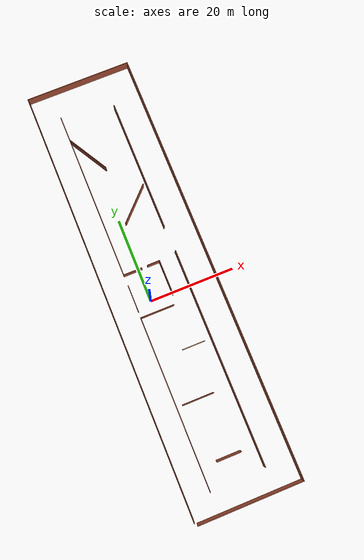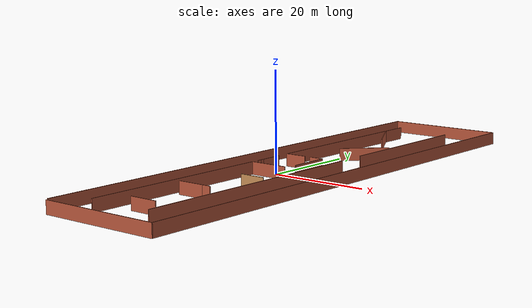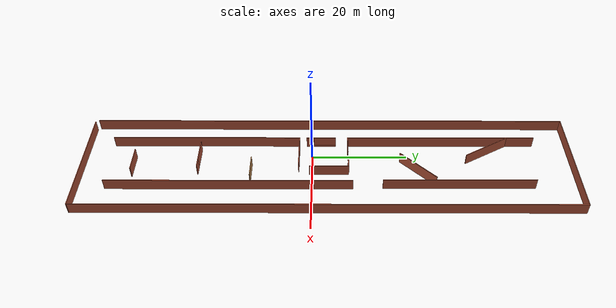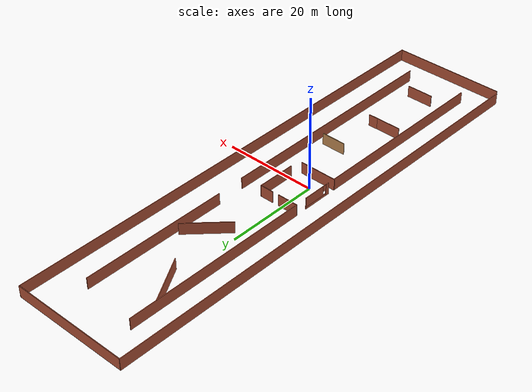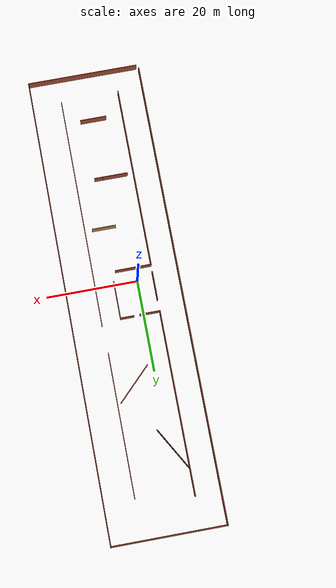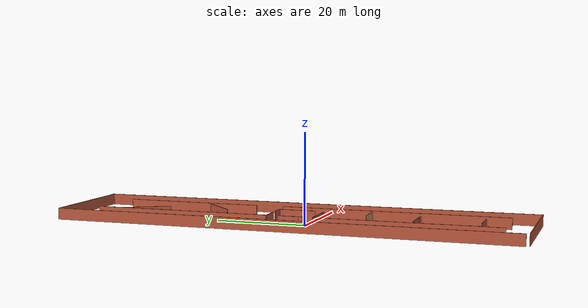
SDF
<?xml version='1.0'?>
<sdf version='1.6'>
  <model name='gallery'>
    <pose frame=''>3.34983 3.27444 0 0 -0 0</pose>
    <link name='Wall_0'>
      <collision name='Wall_0_Collision'>
        <geometry>
          <box>
            <size>8 0.15 2.5</size>
          </box>
        </geometry>
        <pose frame=''>0 0 1.25 0 -0 0</pose>
      </collision>
      <visual name='Wall_0_Visual'>
        <pose frame=''>0 0 1.25 0 -0 0</pose>
        <geometry>
          <box>
            <size>8 0.15 2.5</size>
          </box>
        </geometry>
        <material>
          <script>
            <uri>file://media/materials/scripts/gazebo.material</uri>
            <name>Gazebo/Bricks</name>
          </script>
          <ambient>1 1 1 1</ambient>
        </material>
        <meta>
          <layer>0</layer>
        </meta>
      </visual>
      <pose frame=''>-2.95252 -6.06716 0 0 -0 0</pose>
    </link>
    <link name='Wall_11'>
      <collision name='Wall_11_Collision'>
        <geometry>
          <box>
            <size>3 0.15 2.5</size>
          </box>
        </geometry>
        <pose frame=''>0 0 1.25 0 -0 0</pose>
      </collision>
      <visual name='Wall_11_Visual'>
        <pose frame=''>0 0 1.25 0 -0 0</pose>
        <geometry>
          <box>
            <size>3 0.15 2.5</size>
          </box>
        </geometry>
        <material>
          <script>
            <uri>file://media/materials/scripts/gazebo.material</uri>
            <name>Gazebo/Bricks</name>
          </script>
          <ambient>1 1 1 1</ambient>
        </material>
        <meta>
          <layer>0</layer>
        </meta>
      </visual>
      <pose frame=''>0.336652 4.31441 0 0 -0 0</pose>
    </link>
    <link name='Wall_12'>
      <collision name='Wall_12_Collision'>
        <geometry>
          <box>
            <size>8.25 0.15 2.5</size>
          </box>
        </geometry>
        <pose frame=''>0 0 1.25 0 -0 0</pose>
      </collision>
      <visual name='Wall_12_Visual'>
        <pose frame=''>0 0 1.25 0 -0 0</pose>
        <geometry>
          <box>
            <size>8.25 0.15 2.5</size>
          </box>
        </geometry>
        <material>
          <script>
            <uri>file://media/materials/scripts/gazebo.material</uri>
            <name>Gazebo/Bricks</name>
          </script>
          <ambient>1 1 1 1</ambient>
        </material>
        <meta>
          <layer>0</layer>
        </meta>
      </visual>
      <pose frame=''>1.76165 0.264411 0 0 -0 -1.5708</pose>
    </link>
    <link name='Wall_20'>
      <collision name='Wall_20_Collision'>
        <geometry>
          <box>
            <size>101.75 0.15 2.5</size>
          </box>
        </geometry>
        <pose frame=''>0 0 1.25 0 -0 0</pose>
      </collision>
      <visual name='Wall_20_Visual'>
        <pose frame=''>0 0 1.25 0 -0 0</pose>
        <geometry>
          <box>
            <size>101.75 0.15 2.5</size>
          </box>
        </geometry>
        <material>
          <script>
            <uri>file://media/materials/scripts/gazebo.material</uri>
            <name>Gazebo/Bricks</name>
          </script>
          <ambient>1 1 1 1</ambient>
        </material>
        <meta>
          <layer>0</layer>
        </meta>
      </visual>
      <pose frame=''>-12.425 0.375 0 0 -0 1.5708</pose>
    </link>
    <link name='Wall_21'>
      <collision name='Wall_21_Collision'>
        <geometry>
          <box>
            <size>25 0.15 2.5</size>
          </box>
        </geometry>
        <pose frame=''>0 0 1.25 0 -0 0</pose>
      </collision>
      <visual name='Wall_21_Visual'>
        <pose frame=''>0 0 1.25 0 -0 0</pose>
        <geometry>
          <box>
            <size>25 0.15 2.5</size>
          </box>
        </geometry>
        <material>
          <script>
            <uri>file://media/materials/scripts/gazebo.material</uri>
            <name>Gazebo/Bricks</name>
          </script>
          <ambient>1 1 1 1</ambient>
        </material>
        <meta>
          <layer>0</layer>
        </meta>
      </visual>
      <pose frame=''>0 51.175 0 0 -0 0</pose>
    </link>
    <link name='Wall_22'>
      <collision name='Wall_22_Collision'>
        <geometry>
          <box>
            <size>102.5 0.15 2.5</size>
          </box>
        </geometry>
        <pose frame=''>0 0 1.25 0 -0 0</pose>
      </collision>
      <visual name='Wall_22_Visual'>
        <pose frame=''>0 0 1.25 0 -0 0</pose>
        <geometry>
          <box>
            <size>102.5 0.15 2.5</size>
          </box>
        </geometry>
        <material>
          <script>
            <uri>file://media/materials/scripts/gazebo.material</uri>
            <name>Gazebo/Bricks</name>
          </script>
          <ambient>1 1 1 1</ambient>
        </material>
        <meta>
          <layer>0</layer>
        </meta>
      </visual>
      <pose frame=''>12.425 -0 0 0 -0 -1.5708</pose>
    </link>
    <link name='Wall_23'>
      <collision name='Wall_23_Collision'>
        <geometry>
          <box>
            <size>24.5 0.15 2.5</size>
          </box>
        </geometry>
        <pose frame=''>0 0 1.25 0 -0 0</pose>
      </collision>
      <visual name='Wall_23_Visual'>
        <pose frame=''>0 0 1.25 0 -0 0</pose>
        <geometry>
          <box>
            <size>24.5 0.15 2.5</size>
          </box>
        </geometry>
        <material>
          <script>
            <uri>file://media/materials/scripts/gazebo.material</uri>
            <name>Gazebo/Bricks</name>
          </script>
          <ambient>1 1 1 1</ambient>
        </material>
        <meta>
          <layer>0</layer>
        </meta>
      </visual>
      <pose frame=''>0.25 -51.175 0 0 -0 3.14159</pose>
    </link>
    <link name='Wall_25'>
      <collision name='Wall_25_Collision'>
        <geometry>
          <box>
            <size>40 0.15 2.5</size>
          </box>
        </geometry>
        <pose frame=''>0 0 1.25 0 -0 0</pose>
      </collision>
      <visual name='Wall_25_Visual'>
        <pose frame=''>0 0 1.25 0 -0 0</pose>
        <geometry>
          <box>
            <size>40 0.15 2.5</size>
          </box>
        </geometry>
        <material>
          <script>
            <uri>file://media/materials/scripts/gazebo.material</uri>
            <name>Gazebo/Bricks</name>
          </script>
          <ambient>0.760784 0.662745 0.627451 1</ambient>
        </material>
        <meta>
          <layer>0</layer>
        </meta>
      </visual>
      <pose frame=''>-6.87752 -25.9922 0 0 -0 -1.5708</pose>
    </link>
    <link name='Wall_27'>
      <collision name='Wall_27_Collision'>
        <geometry>
          <box>
            <size>40 0.15 2.5</size>
          </box>
        </geometry>
        <pose frame=''>0 0 1.25 0 -0 0</pose>
      </collision>
      <visual name='Wall_27_Visual'>
        <pose frame=''>0 0 1.25 0 -0 0</pose>
        <geometry>
          <box>
            <size>40 0.15 2.5</size>
          </box>
        </geometry>
        <material>
          <script>
            <uri>file://media/materials/scripts/gazebo.material</uri>
            <name>Gazebo/Bricks</name>
          </script>
          <ambient>1 1 1 1</ambient>
        </material>
        <meta>
          <layer>0</layer>
        </meta>
      </visual>
      <pose frame=''>-6.87197 24.1779 0 0 -0 1.5708</pose>
    </link>
    <link name='Wall_29'>
      <collision name='Wall_29_Collision'>
        <geometry>
          <box>
            <size>50.75 0.15 2.5</size>
          </box>
        </geometry>
        <pose frame=''>0 0 1.25 0 -0 0</pose>
      </collision>
      <visual name='Wall_29_Visual'>
        <pose frame=''>0 0 1.25 0 -0 0</pose>
        <geometry>
          <box>
            <size>50.75 0.15 2.5</size>
          </box>
        </geometry>
        <material>
          <script>
            <uri>file://media/materials/scripts/gazebo.material</uri>
            <name>Gazebo/Bricks</name>
          </script>
          <ambient>1 1 1 1</ambient>
        </material>
        <meta>
          <layer>0</layer>
        </meta>
      </visual>
      <pose frame=''>5.95783 -20.2328 0 0 -0 -1.5708</pose>
    </link>
    <link name='Wall_31'>
      <collision name='Wall_31_Collision'>
        <geometry>
          <box>
            <size>31.25 0.15 2.5</size>
          </box>
        </geometry>
        <pose frame=''>0 0 1.25 0 -0 0</pose>
      </collision>
      <visual name='Wall_31_Visual'>
        <pose frame=''>0 0 1.25 0 -0 0</pose>
        <geometry>
          <box>
            <size>31.25 0.15 2.5</size>
          </box>
        </geometry>
        <material>
          <script>
            <uri>file://media/materials/scripts/gazebo.material</uri>
            <name>Gazebo/Bricks</name>
          </script>
          <ambient>1 1 1 1</ambient>
        </material>
        <meta>
          <layer>0</layer>
        </meta>
      </visual>
      <pose frame=''>5.70892 26.84 0 0 -0 1.5708</pose>
    </link>
    <link name='Wall_33'>
      <collision name='Wall_33_Collision'>
        <geometry>
          <box>
            <size>10.75 0.15 2.5</size>
          </box>
        </geometry>
        <pose frame=''>0 0 1.25 0 -0 0</pose>
      </collision>
      <visual name='Wall_33_Visual'>
        <pose frame=''>0 0 1.25 0 -0 0</pose>
        <geometry>
          <box>
            <size>10.75 0.15 2.5</size>
          </box>
        </geometry>
        <material>
          <script>
            <uri>file://media/materials/scripts/gazebo.material</uri>
            <name>Gazebo/Bricks</name>
          </script>
          <ambient>1 1 1 1</ambient>
        </material>
        <meta>
          <layer>0</layer>
        </meta>
      </visual>
      <pose frame=''>-4.19225 33.6852 0 0 -0 -1.0472</pose>
    </link>
    <link name='Wall_35'>
      <collision name='Wall_35_Collision'>
        <geometry>
          <box>
            <size>10 0.15 2.5</size>
          </box>
        </geometry>
        <pose frame=''>0 0 1.25 0 -0 0</pose>
      </collision>
      <visual name='Wall_35_Visual'>
        <pose frame=''>0 0 1.25 0 -0 0</pose>
        <geometry>
          <box>
            <size>10 0.15 2.5</size>
          </box>
        </geometry>
        <material>
          <script>
            <uri>file://media/materials/scripts/gazebo.material</uri>
            <name>Gazebo/Bricks</name>
          </script>
          <ambient>1 1 1 1</ambient>
        </material>
        <meta>
          <layer>0</layer>
        </meta>
      </visual>
      <pose frame=''>1.42978 18.6846 0 0 -0 -2.35619</pose>
    </link>
    <link name='Wall_39'>
      <collision name='Wall_39_Collision'>
        <geometry>
          <box>
            <size>5.25 0.15 2.5</size>
          </box>
        </geometry>
        <pose frame=''>0 0 1.25 0 -0 0</pose>
      </collision>
      <visual name='Wall_39_Visual'>
        <pose frame=''>0 0 1.25 0 -0 0</pose>
        <geometry>
          <box>
            <size>5.25 0.15 2.5</size>
          </box>
        </geometry>
        <material>
          <script>
            <uri>file://media/materials/scripts/gazebo.material</uri>
            <name>Gazebo/Wood</name>
          </script>
          <ambient>1 1 1 1</ambient>
        </material>
        <meta>
          <layer>0</layer>
        </meta>
      </visual>
      <pose frame=''>1.71908 -15.9864 0 0 -0 3.14159</pose>
    </link>
    <link name='Wall_41'>
      <collision name='Wall_41_Collision'>
        <geometry>
          <box>
            <size>5.5 0.15 2.5</size>
          </box>
        </geometry>
        <pose frame=''>0 0 1.25 0 -0 0</pose>
      </collision>
      <visual name='Wall_41_Visual'>
        <pose frame=''>0 0 1.25 0 -0 0</pose>
        <geometry>
          <box>
            <size>5.5 0.15 2.5</size>
          </box>
        </geometry>
        <material>
          <script>
            <uri>file://media/materials/scripts/gazebo.material</uri>
            <name>Gazebo/Bricks</name>
          </script>
          <ambient>1 1 1 1</ambient>
        </material>
        <meta>
          <layer>0</layer>
        </meta>
      </visual>
      <pose frame=''>-2.7769 -27.1002 0 0 -0 0</pose>
    </link>
    <link name='Wall_42'>
      <collision name='Wall_42_Collision'>
        <geometry>
          <box>
            <size>2 0.15 2.5</size>
          </box>
        </geometry>
        <pose frame=''>0 0 1.25 0 -0 0</pose>
      </collision>
      <visual name='Wall_42_Visual'>
        <pose frame=''>0 0 1.25 0 -0 0</pose>
        <geometry>
          <box>
            <size>2 0.15 2.5</size>
          </box>
        </geometry>
        <material>
          <script>
            <uri>file://media/materials/scripts/gazebo.material</uri>
            <name>Gazebo/Bricks</name>
          </script>
          <ambient>1 1 1 1</ambient>
        </material>
        <meta>
          <layer>0</layer>
        </meta>
      </visual>
      <pose frame=''>0.823097 -27.1002 0 0 -0 0</pose>
    </link>
    <link name='Wall_44'>
      <collision name='Wall_44_Collision'>
        <geometry>
          <box>
            <size>5.75 0.15 2.5</size>
          </box>
        </geometry>
        <pose frame=''>0 0 1.25 0 -0 0</pose>
      </collision>
      <visual name='Wall_44_Visual'>
        <pose frame=''>0 0 1.25 0 -0 0</pose>
        <geometry>
          <box>
            <size>5.75 0.15 2.5</size>
          </box>
        </geometry>
        <material>
          <script>
            <uri>file://media/materials/scripts/gazebo.material</uri>
            <name>Gazebo/Bricks</name>
          </script>
          <ambient>1 1 1 1</ambient>
        </material>
        <meta>
          <layer>0</layer>
        </meta>
      </visual>
      <pose frame=''>-0.334009 -40.7079 0 0 -0 0</pose>
    </link>
    <link name='Wall_7'>
      <pose frame=''>-6.83167 -1.40732 0 0 -0 1.5708</pose>
      <visual name='Wall_7_Visual_0'>
        <pose frame=''>-2.74088 0 1.25 0 -0 0</pose>
        <geometry>
          <box>
            <size>0.76824 0.15 2.5</size>
          </box>
        </geometry>
        <material>
          <script>
            <uri>file://media/materials/scripts/gazebo.material</uri>
            <name>Gazebo/Bricks</name>
          </script>
          <ambient>1 1 1 1</ambient>
        </material>
        <meta>
          <layer>0</layer>
        </meta>
      </visual>
      <collision name='Wall_7_Collision_0'>
        <geometry>
          <box>
            <size>0.76824 0.15 2.5</size>
          </box>
        </geometry>
        <pose frame=''>-2.74088 0 1.25 0 -0 0</pose>
      </collision>
      <visual name='Wall_7_Visual_1'>
        <pose frame=''>0.38412 0 0.25 0 -0 0</pose>
        <geometry>
          <box>
            <size>5.48176 0.15 0.5</size>
          </box>
        </geometry>
        <material>
          <script>
            <uri>file://media/materials/scripts/gazebo.material</uri>
            <name>Gazebo/Bricks</name>
          </script>
          <ambient>1 1 1 1</ambient>
        </material>
        <meta>
          <layer>0</layer>
        </meta>
      </visual>
      <collision name='Wall_7_Collision_1'>
        <geometry>
          <box>
            <size>5.48176 0.15 0.5</size>
          </box>
        </geometry>
        <pose frame=''>0.38412 0 0.25 0 -0 0</pose>
      </collision>
      <visual name='Wall_7_Visual_2'>
        <pose frame=''>0.78412 0 1.5 0 -0 0</pose>
        <geometry>
          <box>
            <size>4.68176 0.15 2</size>
          </box>
        </geometry>
        <material>
          <script>
            <uri>file://media/materials/scripts/gazebo.material</uri>
            <name>Gazebo/Bricks</name>
          </script>
          <ambient>1 1 1 1</ambient>
        </material>
        <meta>
          <layer>0</layer>
        </meta>
      </visual>
      <collision name='Wall_7_Collision_2'>
        <geometry>
          <box>
            <size>4.68176 0.15 2</size>
          </box>
        </geometry>
        <pose frame=''>0.78412 0 1.5 0 -0 0</pose>
      </collision>
      <visual name='Wall_7_Visual_3'>
        <pose frame=''>-1.95676 0 1.9 0 -0 0</pose>
        <geometry>
          <box>
            <size>0.8 0.15 1.2</size>
          </box>
        </geometry>
        <material>
          <script>
            <uri>file://media/materials/scripts/gazebo.material</uri>
            <name>Gazebo/Bricks</name>
          </script>
          <ambient>1 1 1 1</ambient>
        </material>
        <meta>
          <layer>0</layer>
        </meta>
      </visual>
      <collision name='Wall_7_Collision_3'>
        <geometry>
          <box>
            <size>0.8 0.15 1.2</size>
          </box>
        </geometry>
        <pose frame=''>-1.95676 0 1.9 0 -0 0</pose>
      </collision>
    </link>
    <link name='Wall_9'>
      <collision name='Wall_9_Collision'>
        <geometry>
          <box>
            <size>4.5 0.15 2.5</size>
          </box>
        </geometry>
        <pose frame=''>0 0 1.25 0 -0 0</pose>
      </collision>
      <visual name='Wall_9_Visual'>
        <pose frame=''>0 0 1.25 0 -0 0</pose>
        <geometry>
          <box>
            <size>4.5 0.15 2.5</size>
          </box>
        </geometry>
        <material>
          <script>
            <uri>file://media/materials/scripts/gazebo.material</uri>
            <name>Gazebo/Bricks</name>
          </script>
          <ambient>1 1 1 1</ambient>
        </material>
        <meta>
          <layer>0</layer>
        </meta>
      </visual>
      <pose frame=''>-4.69697 4.25288 0 0 -0 0</pose>
    </link>
    <static>1</static>
  </model>
</sdf>
